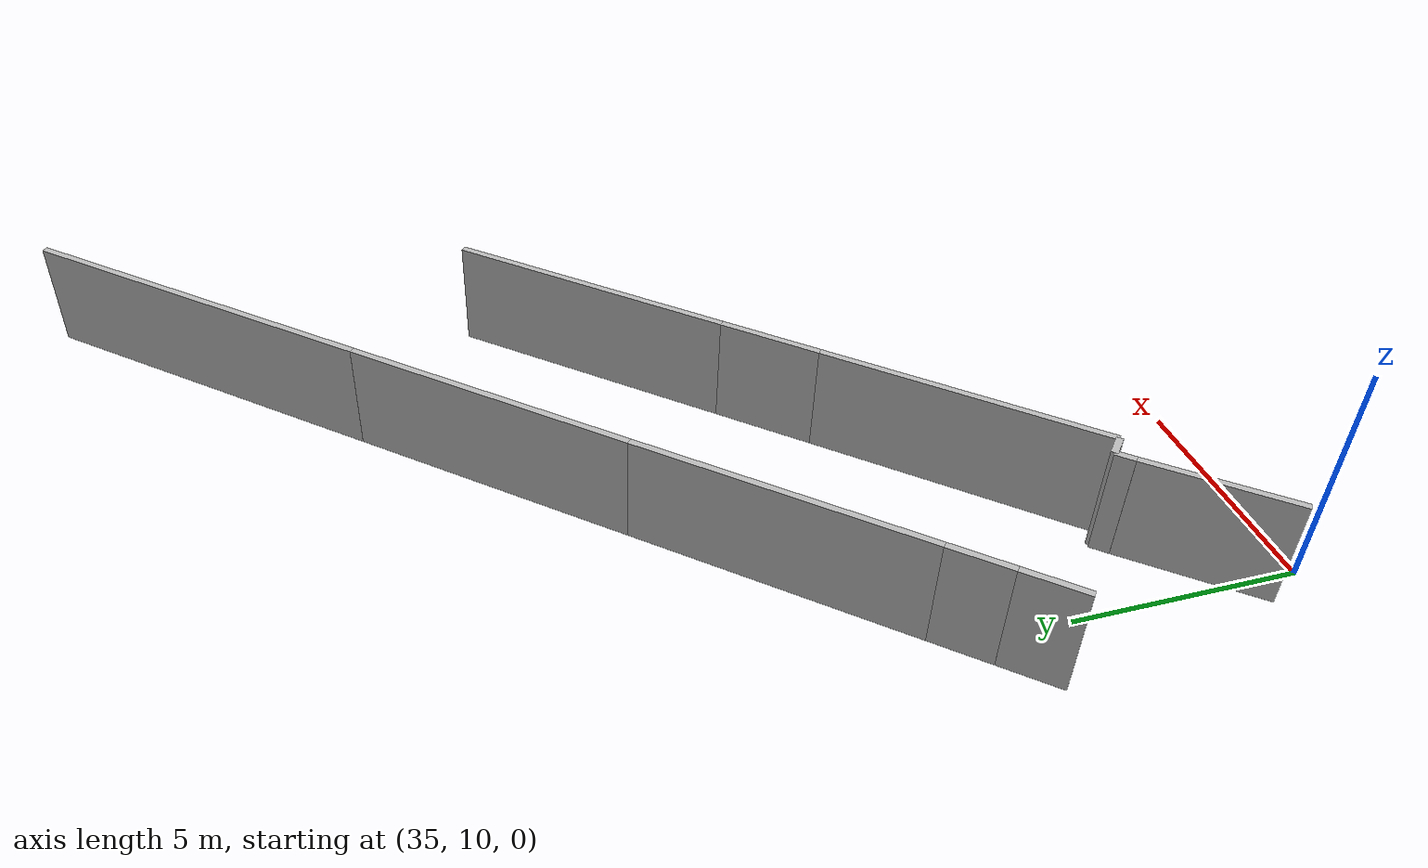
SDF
<?xml version="1.0" ?>
<sdf version="1.6">
  <model name="sps_1548">
    <pose frame="">0 0 0 0 -0 0</pose>
    <static>1</static>
    <self_collide>0</self_collide>
    <allow_auto_disable>0</allow_auto_disable>
    <link name="Wall47">
      <kinematic>0</kinematic>
      <gravity>1</gravity>
      <self_collide>0</self_collide>
      <collision name="collision">
        <geometry>
          <box>
            <size>1.3635 0.15 2.5</size>
          </box>
        </geometry>
        <pose frame="">0 0 0 0 -0 0</pose>
      </collision>
      <visual name="visual">
        <geometry>
          <box>
            <size>1.3635 0.15 2.5</size>
          </box>
        </geometry>
        <pose frame="">0 0 0 0 -0 0</pose>
        <cast_shadows>1</cast_shadows>
        <transparency>0.0</transparency>
      </visual>
      <pose frame="">34.0084 16.3951 1.25 0 -0 0.828023</pose>
    </link>
    <link name="Wall48">
      <kinematic>0</kinematic>
      <gravity>1</gravity>
      <self_collide>0</self_collide>
      <collision name="collision">
        <geometry>
          <box>
            <size>1.35194 0.15 2.5</size>
          </box>
        </geometry>
        <pose frame="">0 0 0 0 -0 0</pose>
      </collision>
      <visual name="visual">
        <geometry>
          <box>
            <size>1.35194 0.15 2.5</size>
          </box>
        </geometry>
        <pose frame="">0 0 0 0 -0 0</pose>
        <cast_shadows>1</cast_shadows>
        <transparency>0.0</transparency>
      </visual>
      <pose frame="">34.9266 17.3952 1.25 0 -0 0.828023</pose>
    </link>
    <link name="Wall49">
      <kinematic>0</kinematic>
      <gravity>1</gravity>
      <self_collide>0</self_collide>
      <collision name="collision">
        <geometry>
          <box>
            <size>6.42116 0.15 2.5</size>
          </box>
        </geometry>
        <pose frame="">0 0 0 0 -0 0</pose>
      </collision>
      <visual name="visual">
        <geometry>
          <box>
            <size>6.42116 0.15 2.5</size>
          </box>
        </geometry>
        <pose frame="">0 0 0 0 -0 0</pose>
        <cast_shadows>1</cast_shadows>
        <transparency>0.0</transparency>
      </visual>
      <pose frame="">37.5552 20.258 1.25 0 -0 0.828023</pose>
    </link>
    <link name="Wall130">
      <kinematic>0</kinematic>
      <gravity>1</gravity>
      <self_collide>0</self_collide>
      <collision name="collision">
        <geometry>
          <box>
            <size>6.3162 0.15 2.5</size>
          </box>
        </geometry>
        <pose frame="">0 0 0 0 -0 0</pose>
      </collision>
      <visual name="visual">
        <geometry>
          <box>
            <size>6.3162 0.15 2.5</size>
          </box>
        </geometry>
        <pose frame="">0 0 0 0 -0 0</pose>
        <cast_shadows>1</cast_shadows>
        <transparency>0.0</transparency>
      </visual>
      <pose frame="">39.3552 15.5674 1.25 0 -0 0.827761</pose>
    </link>
    <link name="Wall131">
      <kinematic>0</kinematic>
      <gravity>1</gravity>
      <self_collide>0</self_collide>
      <collision name="collision">
        <geometry>
          <box>
            <size>2.28893 0.15 2.5</size>
          </box>
        </geometry>
        <pose frame="">0 0 0 0 -0 0</pose>
      </collision>
      <visual name="visual">
        <geometry>
          <box>
            <size>2.28893 0.15 2.5</size>
          </box>
        </geometry>
        <pose frame="">0 0 0 0 -0 0</pose>
        <cast_shadows>1</cast_shadows>
        <transparency>0.0</transparency>
      </visual>
      <pose frame="">42.266 18.7359 1.25 0 -0 0.827761</pose>
    </link>
    <link name="Wall225">
      <kinematic>0</kinematic>
      <gravity>1</gravity>
      <self_collide>0</self_collide>
      <collision name="collision">
        <geometry>
          <box>
            <size>3.19752 0.15 2.5</size>
          </box>
        </geometry>
        <pose frame="">0 0 0 0 -0 0</pose>
      </collision>
      <visual name="visual">
        <geometry>
          <box>
            <size>3.19752 0.15 2.5</size>
          </box>
        </geometry>
        <pose frame="">0 0 0 0 -0 0</pose>
        <cast_shadows>1</cast_shadows>
        <transparency>0.0</transparency>
      </visual>
      <pose frame="">35.5139 12.0459 1.25 0 0 -2.28275</pose>
    </link>
    <link name="Wall232">
      <kinematic>0</kinematic>
      <gravity>1</gravity>
      <self_collide>0</self_collide>
      <collision name="collision">
        <geometry>
          <box>
            <size>0.435156 0.15 2.5</size>
          </box>
        </geometry>
        <pose frame="">0 0 0 0 -0 0</pose>
      </collision>
      <visual name="visual">
        <geometry>
          <box>
            <size>0.435156 0.15 2.5</size>
          </box>
        </geometry>
        <pose frame="">0 0 0 0 -0 0</pose>
        <cast_shadows>1</cast_shadows>
        <transparency>0.0</transparency>
      </visual>
      <pose frame="">36.704 13.418 1.25 0 -0 0.837689</pose>
    </link>
    <link name="Wall370">
      <kinematic>0</kinematic>
      <gravity>1</gravity>
      <self_collide>0</self_collide>
      <collision name="collision">
        <geometry>
          <box>
            <size>0.500386 0.15 2.5</size>
          </box>
        </geometry>
        <pose frame="">0 0 0 0 -0 0</pose>
      </collision>
      <visual name="visual">
        <geometry>
          <box>
            <size>0.500386 0.15 2.5</size>
          </box>
        </geometry>
        <pose frame="">0 0 0 0 -0 0</pose>
        <cast_shadows>1</cast_shadows>
        <transparency>0.0</transparency>
      </visual>
      <pose frame="">37.0341 13.4107 1.25 0 0 -0.741483</pose>
    </link>
    <link name="Wall371">
      <kinematic>0</kinematic>
      <gravity>1</gravity>
      <self_collide>0</self_collide>
      <collision name="collision">
        <geometry>
          <box>
            <size>8.74177 0.15 2.5</size>
          </box>
        </geometry>
        <pose frame="">0 0 0 0 -0 0</pose>
      </collision>
      <visual name="visual">
        <geometry>
          <box>
            <size>8.74177 0.15 2.5</size>
          </box>
        </geometry>
        <pose frame="">0 0 0 0 -0 0</pose>
        <cast_shadows>1</cast_shadows>
        <transparency>0.0</transparency>
      </visual>
      <pose frame="">47.1743 30.7288 1.25 0 -0 0.827795</pose>
    </link>
    <link name="Wall553">
      <kinematic>0</kinematic>
      <gravity>1</gravity>
      <self_collide>0</self_collide>
      <collision name="collision">
        <geometry>
          <box>
            <size>6.63703 0.15 2.5</size>
          </box>
        </geometry>
        <pose frame="">0 0 0 0 -0 0</pose>
      </collision>
      <visual name="visual">
        <geometry>
          <box>
            <size>6.63703 0.15 2.5</size>
          </box>
        </geometry>
        <pose frame="">0 0 0 0 -0 0</pose>
        <cast_shadows>1</cast_shadows>
        <transparency>0.0</transparency>
      </visual>
      <pose frame="">41.972 25.0664 1.25 0 -0 0.827626</pose>
    </link>
    <link name="Wall625">
      <kinematic>0</kinematic>
      <gravity>1</gravity>
      <self_collide>0</self_collide>
      <collision name="collision">
        <geometry>
          <box>
            <size>6.63666 0.15 2.5</size>
          </box>
        </geometry>
        <pose frame="">0 0 0 0 -0 0</pose>
      </collision>
      <visual name="visual">
        <geometry>
          <box>
            <size>6.63666 0.15 2.5</size>
          </box>
        </geometry>
        <pose frame="">0 0 0 0 -0 0</pose>
        <cast_shadows>1</cast_shadows>
        <transparency>0.0</transparency>
      </visual>
      <pose frame="">45.2854 22.0222 1.25 0 -0 0.827687</pose>
    </link>
  </model>
</sdf>
